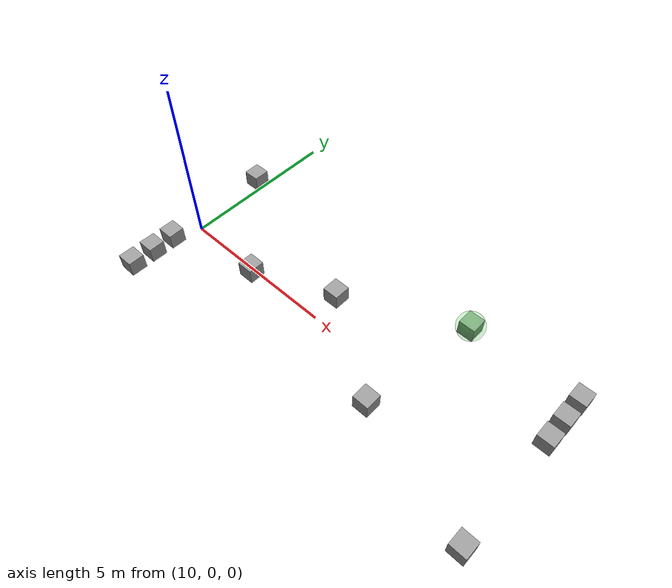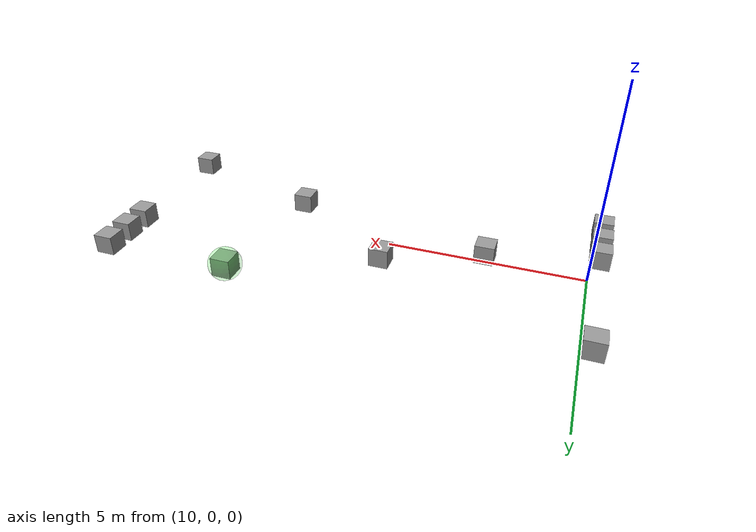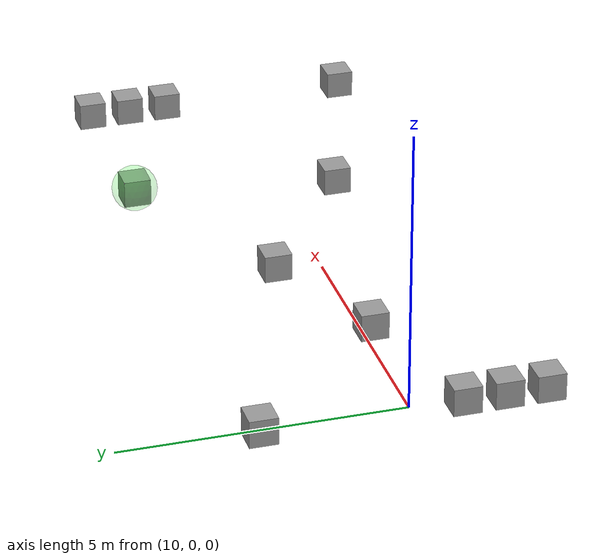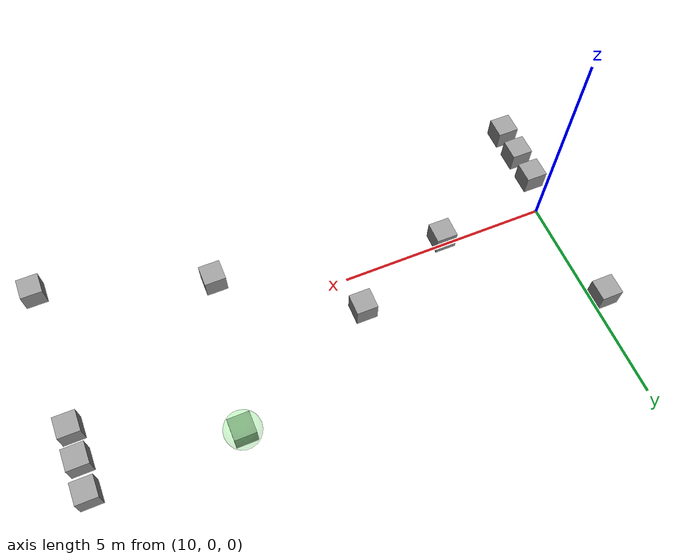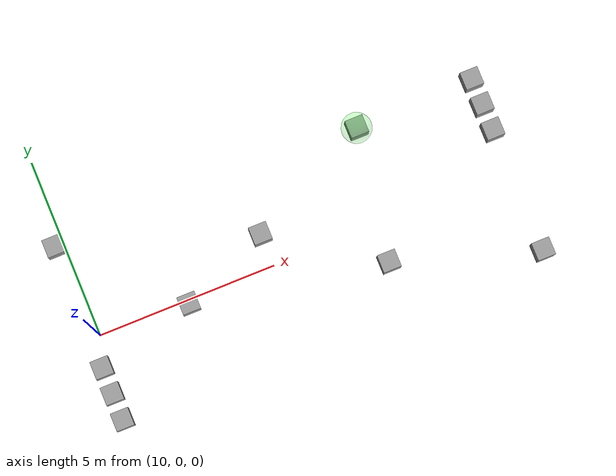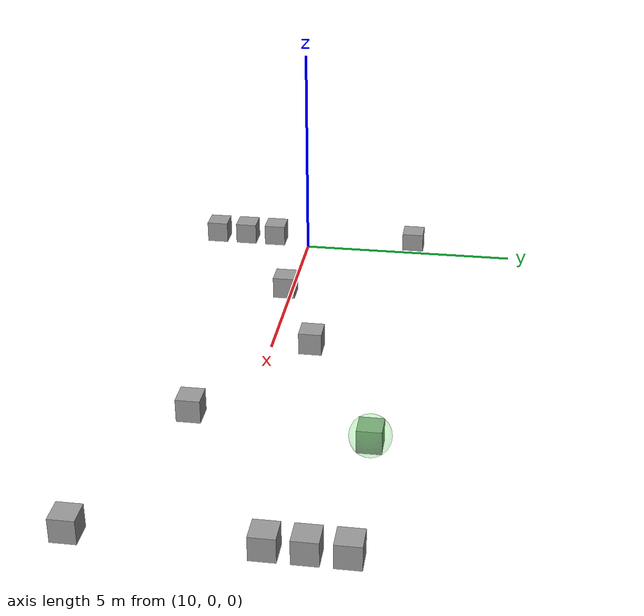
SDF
<sdf version="1.6">
 <world name="default">
  <model name="trap_cont_1_attr">
   <static>0</static>
   <static>0</static>
   <link name="normal_cue_0::vis_cue_normal">
    <inertial>
     <mass>1</mass>
     <inertia>
      <ixx>0.166667</ixx>
      <ixy>0</ixy>
      <ixz>0</ixz>
      <iyy>0.166667</iyy>
      <iyz>0</iyz>
      <izz>0.166667</izz>
     </inertia>
    </inertial>
    <collision name="collision"><geometry><box><size>0.5 0.5 0.5</size></box></geometry></collision>
    <visual name="box_visual">
     <geometry><box><size>0.5 0.5 0.5</size></box></geometry>
     <material>
      <script><name>Gazebo/Grey</name><uri>file://media/materials/scripts/gazebo.material</uri></script>
     </material>
    </visual>
    <pose>0 -2.48 0.25 0 -0 0</pose>
   </link>
   <static>0</static>
   <link name="normal_cue_1::vis_cue_normal">
    <inertial>
     <mass>1</mass>
     <inertia>
      <ixx>0.166667</ixx>
      <ixy>0</ixy>
      <ixz>0</ixz>
      <iyy>0.166667</iyy>
      <iyz>0</iyz>
      <izz>0.166667</izz>
     </inertia>
    </inertial>
    <collision name="collision"><geometry><box><size>0.5 0.5 0.5</size></box></geometry></collision>
    <visual name="box_visual">
     <geometry><box><size>0.5 0.5 0.5</size></box></geometry>
     <material>
      <script><name>Gazebo/Grey</name><uri>file://media/materials/scripts/gazebo.material</uri></script>
     </material>
    </visual>
    <pose>0 -1.745 0.25 0 -0 0</pose>
   </link>
   <static>0</static>
   <link name="normal_cue_2::vis_cue_normal">
    <inertial>
     <mass>1</mass>
     <inertia>
      <ixx>0.166667</ixx>
      <ixy>0</ixy>
      <ixz>0</ixz>
      <iyy>0.166667</iyy>
      <iyz>0</iyz>
      <izz>0.166667</izz>
     </inertia>
    </inertial>
    <collision name="collision"><geometry><box><size>0.5 0.5 0.5</size></box></geometry></collision>
    <visual name="box_visual">
     <geometry><box><size>0.5 0.5 0.5</size></box></geometry>
     <material>
      <script><name>Gazebo/Grey</name><uri>file://media/materials/scripts/gazebo.material</uri></script>
     </material>
    </visual>
    <pose>0 -1.01 0.25 0 -0 0</pose>
   </link>
   <static>0</static>
   <link name="normal_cue_3::vis_cue_normal">
    <inertial>
     <mass>1</mass>
     <inertia>
      <ixx>0.166667</ixx>
      <ixy>0</ixy>
      <ixz>0</ixz>
      <iyy>0.166667</iyy>
      <iyz>0</iyz>
      <izz>0.166667</izz>
     </inertia>
    </inertial>
    <collision name="collision"><geometry><box><size>0.5 0.5 0.5</size></box></geometry></collision>
    <visual name="box_visual">
     <geometry><box><size>0.5 0.5 0.5</size></box></geometry>
     <material>
      <script><name>Gazebo/Grey</name><uri>file://media/materials/scripts/gazebo.material</uri></script>
     </material>
    </visual>
    <pose>0 2.48 0.25 0 -0 0</pose>
   </link>
   <pose>9.74623 0.150061 8e-06 6e-06 -6e-06 0</pose>
  </model>
  <model name="vis_cue_normal">
   <static>0</static>
   <pose>12.5084 -0.130294 0.249996 -7e-06 7e-06 0</pose>
   <link name="vis_cue_normal">
    <inertial>
     <mass>1</mass>
     <inertia>
      <ixx>0.166667</ixx>
      <ixy>0</ixy>
      <ixz>0</ixz>
      <iyy>0.166667</iyy>
      <iyz>0</iyz>
      <izz>0.166667</izz>
     </inertia>
    </inertial>
    <collision name="collision"><geometry><box><size>0.5 0.5 0.5</size></box></geometry></collision>
    <visual name="box_visual">
     <geometry><box><size>0.5 0.5 0.5</size></box></geometry>
     <material>
      <script><name>Gazebo/Grey</name><uri>file://media/materials/scripts/gazebo.material</uri></script>
     </material>
    </visual>
   </link>
  </model>
  <model name="vis_cue_normal_0">
   <static>0</static>
   <pose>14.9624 0.882672 0.249993 6e-06 -6e-06 0</pose>
   <link name="vis_cue_normal">
    <inertial>
     <mass>1</mass>
     <inertia>
      <ixx>0.166667</ixx>
      <ixy>0</ixy>
      <ixz>0</ixz>
      <iyy>0.166667</iyy>
      <iyz>0</iyz>
      <izz>0.166667</izz>
     </inertia>
    </inertial>
    <collision name="collision"><geometry><box><size>0.5 0.5 0.5</size></box></geometry></collision>
    <visual name="box_visual">
     <geometry><box><size>0.5 0.5 0.5</size></box></geometry>
     <material>
      <script><name>Gazebo/Grey</name><uri>file://media/materials/scripts/gazebo.material</uri></script>
     </material>
    </visual>
   </link>
  </model>
  <model name="vis_cue_normal_1">
   <static>0</static>
   <pose>17.8585 -1.08627 0.249993 0 6e-06 0</pose>
   <link name="vis_cue_normal">
    <inertial>
     <mass>1</mass>
     <inertia>
      <ixx>0.166667</ixx>
      <ixy>0</ixy>
      <ixz>0</ixz>
      <iyy>0.166667</iyy>
      <iyz>0</iyz>
      <izz>0.166667</izz>
     </inertia>
    </inertial>
    <collision name="collision"><geometry><box><size>0.5 0.5 0.5</size></box></geometry></collision>
    <visual name="box_visual">
     <geometry><box><size>0.5 0.5 0.5</size></box></geometry>
     <material>
      <script><name>Gazebo/Grey</name><uri>file://media/materials/scripts/gazebo.material</uri></script>
     </material>
    </visual>
   </link>
  </model>
  <model name="trap_cont_1_repel">
   <static>0</static>
   <static>0</static>
   <link name="normal_cue_0::vis_cue_normal">
    <inertial>
     <mass>1</mass>
     <inertia>
      <ixx>0.166667</ixx>
      <ixy>0</ixy>
      <ixz>0</ixz>
      <iyy>0.166667</iyy>
      <iyz>0</iyz>
      <izz>0.166667</izz>
     </inertia>
    </inertial>
    <collision name="collision"><geometry><box><size>0.5 0.5 0.5</size></box></geometry></collision>
    <visual name="box_visual">
     <geometry><box><size>0.5 0.5 0.5</size></box></geometry>
     <material>
      <script><name>Gazebo/Grey</name><uri>file://media/materials/scripts/gazebo.material</uri></script>
     </material>
    </visual>
    <pose>0 -2.48 0.25 0 -0 0</pose>
   </link>
   <static>0</static>
   <link name="normal_cue_1::vis_cue_normal">
    <inertial>
     <mass>1</mass>
     <inertia>
      <ixx>0.166667</ixx>
      <ixy>0</ixy>
      <ixz>0</ixz>
      <iyy>0.166667</iyy>
      <iyz>0</iyz>
      <izz>0.166667</izz>
     </inertia>
    </inertial>
    <collision name="collision"><geometry><box><size>0.5 0.5 0.5</size></box></geometry></collision>
    <visual name="box_visual">
     <geometry><box><size>0.5 0.5 0.5</size></box></geometry>
     <material>
      <script><name>Gazebo/Grey</name><uri>file://media/materials/scripts/gazebo.material</uri></script>
     </material>
    </visual>
    <pose>0 1.01 0.25 0 -0 0</pose>
   </link>
   <static>0</static>
   <link name="normal_cue_2::vis_cue_normal">
    <inertial>
     <mass>1</mass>
     <inertia>
      <ixx>0.166667</ixx>
      <ixy>0</ixy>
      <ixz>0</ixz>
      <iyy>0.166667</iyy>
      <iyz>0</iyz>
      <izz>0.166667</izz>
     </inertia>
    </inertial>
    <collision name="collision"><geometry><box><size>0.5 0.5 0.5</size></box></geometry></collision>
    <visual name="box_visual">
     <geometry><box><size>0.5 0.5 0.5</size></box></geometry>
     <material>
      <script><name>Gazebo/Grey</name><uri>file://media/materials/scripts/gazebo.material</uri></script>
     </material>
    </visual>
    <pose>0 1.745 0.25 0 -0 0</pose>
   </link>
   <static>0</static>
   <link name="normal_cue_3::vis_cue_normal">
    <inertial>
     <mass>1</mass>
     <inertia>
      <ixx>0.166667</ixx>
      <ixy>0</ixy>
      <ixz>0</ixz>
      <iyy>0.166667</iyy>
      <iyz>0</iyz>
      <izz>0.166667</izz>
     </inertia>
    </inertial>
    <collision name="collision"><geometry><box><size>0.5 0.5 0.5</size></box></geometry></collision>
    <visual name="box_visual">
     <geometry><box><size>0.5 0.5 0.5</size></box></geometry>
     <material>
      <script><name>Gazebo/Grey</name><uri>file://media/materials/scripts/gazebo.material</uri></script>
     </material>
    </visual>
    <pose>0 2.48 0.25 0 -0 0</pose>
   </link>
   <pose>21.7795 0.155011 8e-06 6e-06 -6e-06 0</pose>
  </model>
  <model name="vis_cue_attract">
   <static>0</static>
   <pose>18.428 2.58126 0.249993 6e-06 -6e-06 0</pose>
   <link name="vis_cue_attract">
    <inertial>
     <mass>1</mass>
     <inertia>
      <ixx>0.166667</ixx>
      <ixy>0</ixy>
      <ixz>0</ixz>
      <iyy>0.166667</iyy>
      <iyz>0</iyz>
      <izz>0.166667</izz>
     </inertia>
    </inertial>
    <collision name="collision"><geometry><box><size>0.5 0.5 0.5</size></box></geometry></collision>
    <visual name="box_visual">
     <geometry><box><size>0.5 0.5 0.5</size></box></geometry>
     <material>
      <script><name>Gazebo/Grey</name><uri>file://media/materials/scripts/gazebo.material</uri></script>
     </material>
    </visual>
    <visual name="cue_visual">
     <geometry>
      <mesh><uri>model://vis_cue_attract/meshes/sphere.stl</uri><scale>0.85 0.85 0.85</scale></mesh>
     </geometry>
     <material>
      <ambient>0 1 0 0.15</ambient>
      <diffuse>0 1 0 0.15</diffuse>
      <specular>0 1 0 0.15</specular>
      <emissive>0 0 0 0</emissive>
     </material>
    </visual>
   </link>
  </model>
 </world>
</sdf>
